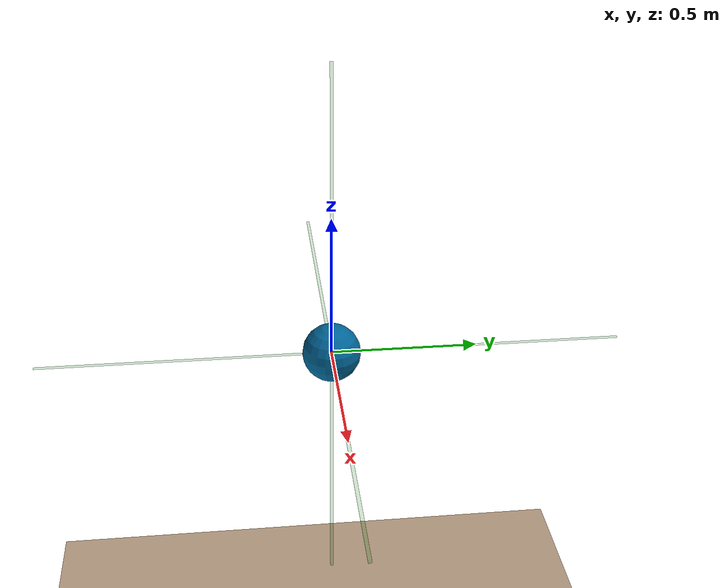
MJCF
<mujoco model="LWR">
  <compiler
    angle="radian"
    meshdir="../../meshes"
    inertiafromgeom="true" />
  <option
    iterations="200"
    timestep="0.002"
    solver="CG"/>
  <size njmax="500" nconmax="100" />
  <visual>
    <map
      fogstart="1.5"
      fogend="3"
      force="0.3"
      />
    <quality
      shadowsize="8192"/>
    <scale
      forcewidth="0.03"
      contactwidth="0.05"
      contactheight="0.03"
      framelength="1.5"
      framewidth="0.1"/>
  </visual>
  <worldbody>
    <body
      name="world_frame"
      pos="0 0 0"
      quat="1 0 0 0">
    </body>
    <body mocap="true" name="mocap" pos="0 0 0">
      <geom conaffinity="0" contype="0" pos="0 0 0" rgba="0 0.5 0 0.7" size="0.005 0.005 0.005" type="box"></geom>
      <geom conaffinity="0" contype="0" pos="0 0 0" rgba="0 0.5 0 0.1" size="1 0.005 0.005" type="box"></geom>
      <geom conaffinity="0" contype="0" pos="0 0 0" rgba="0 0.5 0 0.1" size="0.005 1 0.001" type="box"></geom>
      <geom conaffinity="0" contype="0" pos="0 0 0" rgba="0 0.5 0 0.1" size="0.005 0.005 1" type="box"></geom>
    </body>
    <geom
      name="ground"
      type="plane"
      pos="0 0 -2"
      size="4 4 .05"
      rgba="0.7 0.6 0.5 1"/>
    <light
      directional="false"
      cutoff="90"
      exponent="1"
      diffuse="1 1 1"
      specular="0 0 0"
      pos="1 0 1.5"
      dir="-1 0 -2.5"/>
    <body
      name="optoforce"
      pos="0 0 0"
      quat="1 0 0 0">
      <joint
        name="finger_free_joint"
        type="free"/>
      <geom name="optoforce"  rgba="0.0 0.4 0.6 1" size=".1" type="sphere" mass ="0.2" />
    </body>
    <site name="target" pos="0 0 0.0" size=".1" rgba="1 0.3 0.8 0.3" type="sphere"/>
    <site name="init_pos" pos="0 0 0.0" size=".1" rgba="0 0.4 0.6 0.05" type="sphere"/>
  </worldbody>
  <actuator>
    <motor gear="1 0 0 0 0 0" joint="finger_free_joint" name="finger_0_wrench_actuator"/>
    <motor gear="0 1 0 0 0 0" joint="finger_free_joint" name="finger_1_wrench_actuator"/>
    <motor gear="0 0 1 0 0 0" joint="finger_free_joint" name="finger_2_wrench_actuator"/>
    <motor gear="0 0 0 1 0 0" joint="finger_free_joint" name="finger_3_wrench_actuator"/>
    <motor gear="0 0 0 0 1 0" joint="finger_free_joint" name="finger_4_wrench_actuator"/>
    <motor gear="0 0 0 0 0 1" joint="finger_free_joint" name="finger_5_wrench_actuator"/>
  </actuator>
  <equality>
      <weld body1="mocap" body2="optoforce" solimp="0.9 0.95 0.001" solref="0.02 1"></weld>
  </equality>
</mujoco>
